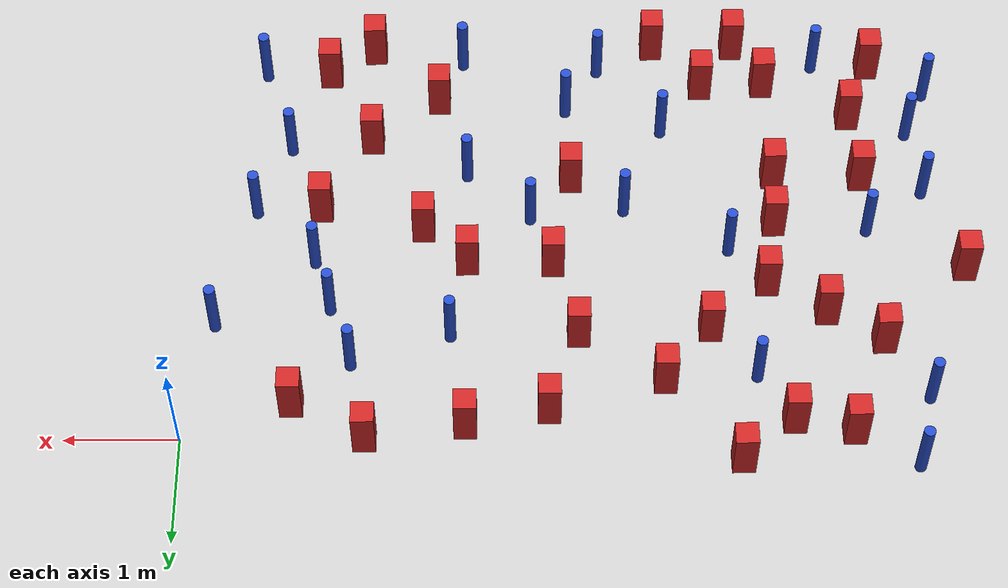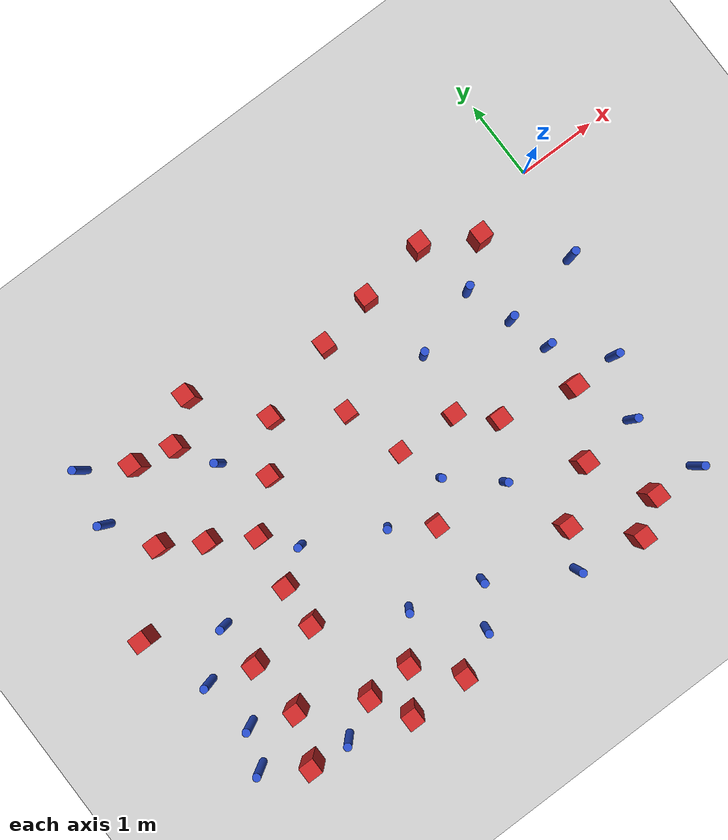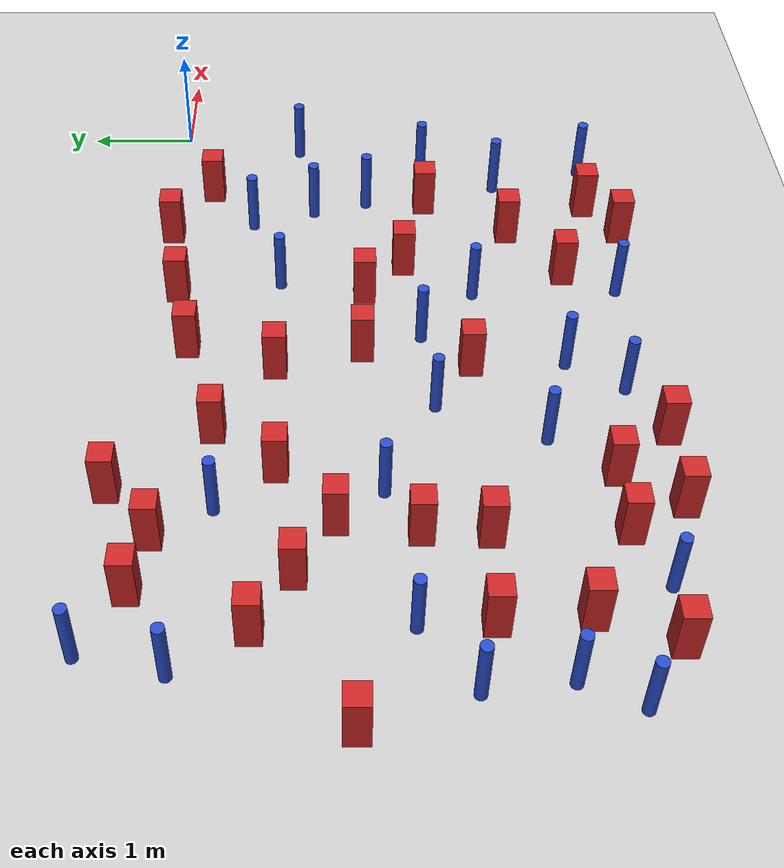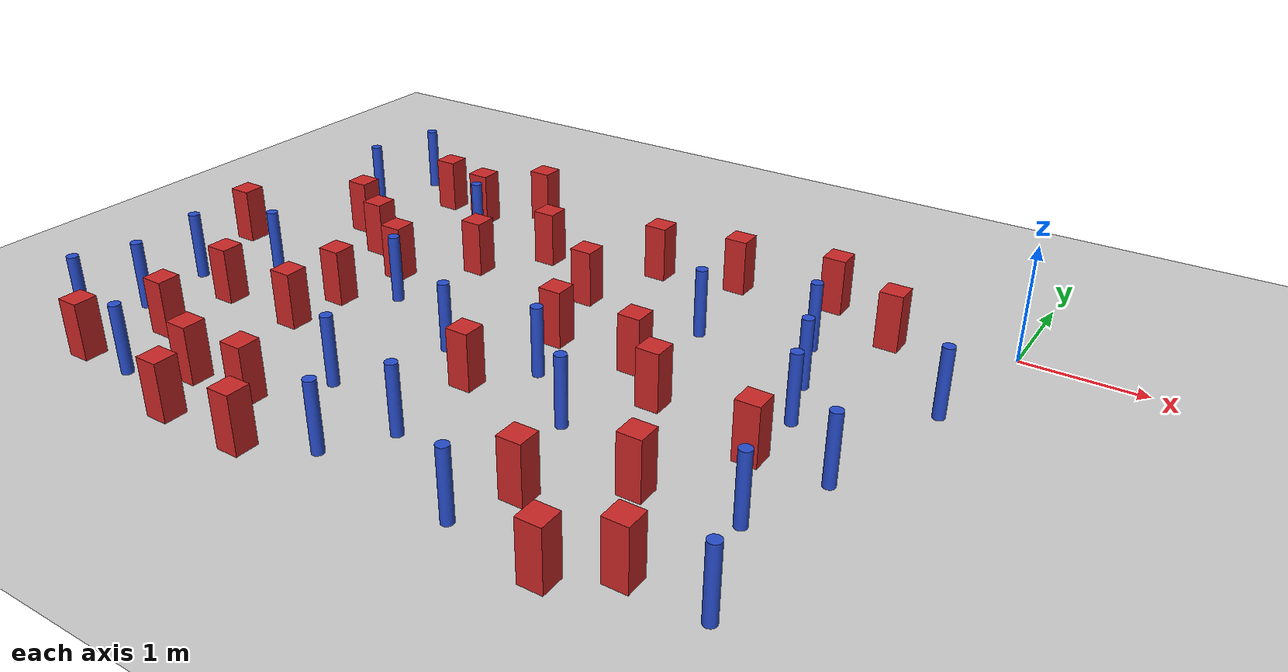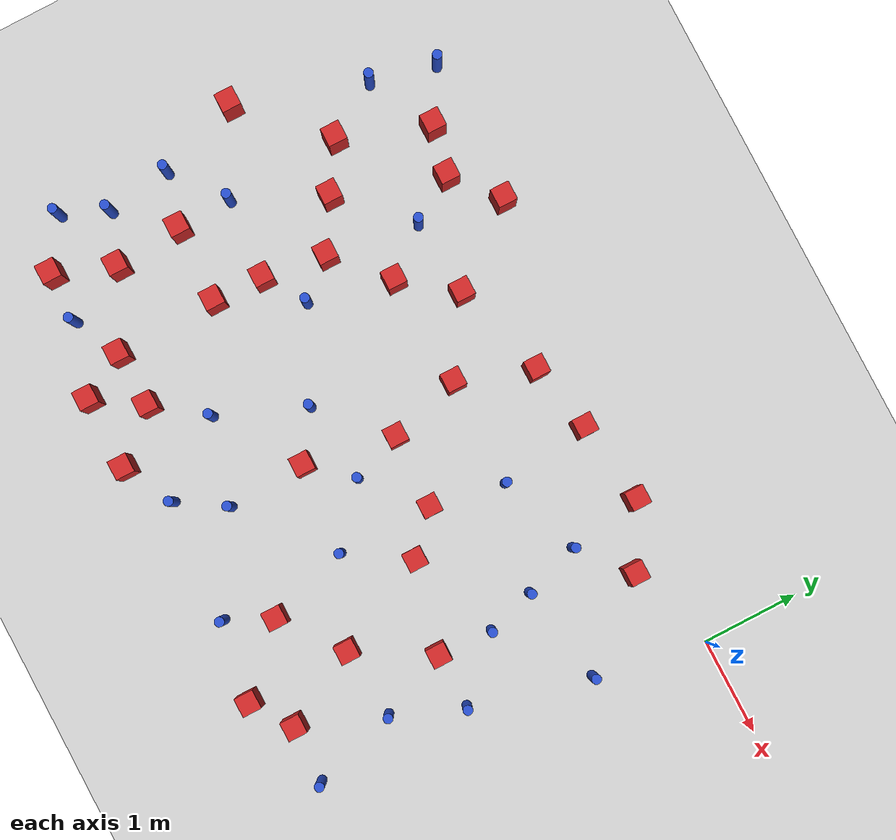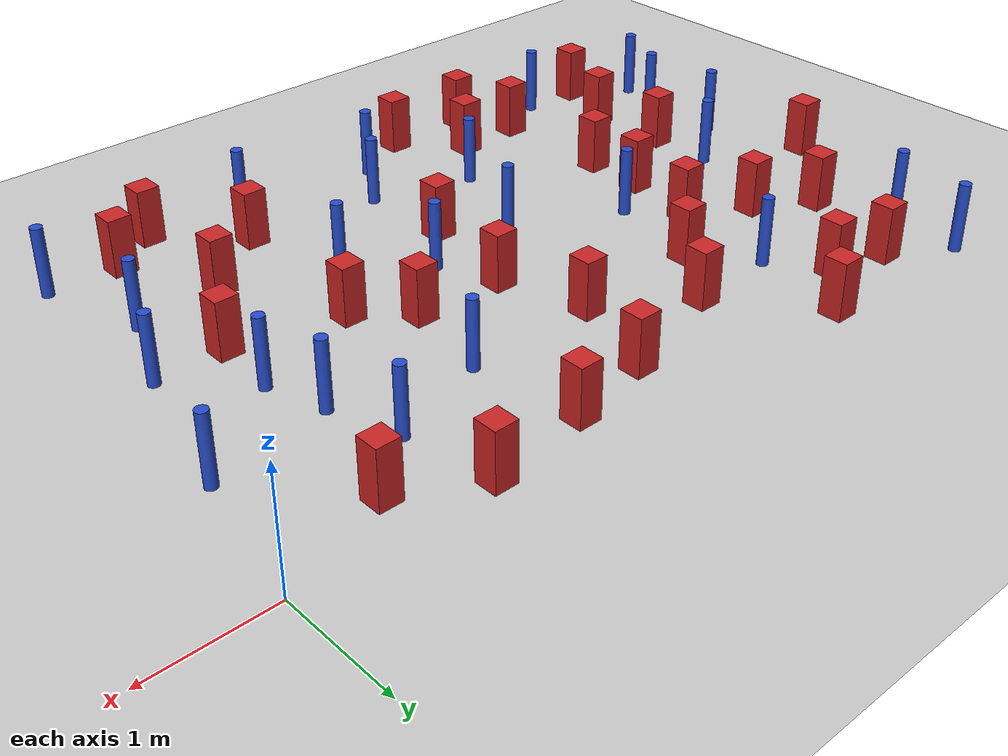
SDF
<sdf version="1.6">
 <world name="default">
  <model name="ground_plane">
   <static>1</static>
   <link name="link">
    <collision name="collision">
     <geometry><plane><normal>0 0 1</normal><size>100 100</size></plane></geometry>
     <surface><friction><ode><mu>100</mu><mu2>50</mu2></ode></friction></surface>
    </collision>
    <visual name="visual">
     <cast_shadows>0</cast_shadows>
     <geometry><plane><normal>0 0 1</normal><size>100 100</size></plane></geometry>
     <material>
      <ambient>1.0 1.0 1.0 1.0</ambient>
      <diffuse>0.8 0.8 0.8 1.0</diffuse>
      <specular>0.01 0.01 0.01 1.000000</specular>
     </material>
    </visual>
   </link>
  </model>
  <model name="pole_obstacle0">
   <static>true</static>
   <pose>-2.32125434121 -1.0319699468 -9.47619616065e-06 5.49618799738e-07 2.3631041407e-07 -1.55090534797e-07</pose>
   <link name="link">
    <pose>0 0 0.3 0 -0 0</pose>
    <inertial>
     <mass>1</mass>
     <inertia><ixx>0.145833</ixx><ixy>0</ixy><ixz>0</ixz><iyy>0.145833</iyy><iyz>0</iyz><izz>0.125</izz></inertia>
    </inertial>
    <collision name="collision">
     <geometry><cylinder><radius>0.05</radius><length>.6</length></cylinder></geometry>
    </collision>
    <visual name="visual">
     <geometry><cylinder><radius>0.05</radius><length>.6</length></cylinder></geometry>
     <material>
      <script><name>Gazebo/Blue</name><uri>file://media/materials/scripts/gazebo.material</uri></script>
     </material>
    </visual>
   </link>
  </model>
  <model name="square_post_obstacle0">
   <static>true</static>
   <pose>-5.65463043567 -1.24283270204 -6.11067671241e-07 -5.50515727128e-06 -8.79689657224e-07 2.37013304536e-05</pose>
   <link name="link">
    <pose>0 0 0.25 0 -0 0</pose>
    <inertial>
     <mass>100</mass>
     <inertia>
      <ixx>0.166667</ixx>
      <ixy>0</ixy>
      <ixz>0</ixz>
      <iyy>0.166667</iyy>
      <iyz>0</iyz>
      <izz>0.166667</izz>
     </inertia>
    </inertial>
    <collision name="collision"><geometry><box><size>.2 .2 .5</size></box></geometry></collision>
    <visual name="visual">
     <geometry><box><size>.2 .2 .5</size></box></geometry>
     <material>
      <script><name>Gazebo/Red</name><uri>file://media/materials/scripts/gazebo.material</uri></script>
     </material>
    </visual>
   </link>
  </model>
  <model name="pole_obstacle5">
   <static>true</static>
   <pose>-1.10176745117 -1.83270935728 -9.47619616065e-06 5.49618799737e-07 2.36310414065e-07 -1.55090534798e-07</pose>
   <link name="link">
    <pose>0 0 0.3 0 -0 0</pose>
    <inertial>
     <mass>1</mass>
     <inertia><ixx>0.145833</ixx><ixy>0</ixy><ixz>0</ixz><iyy>0.145833</iyy><iyz>0</iyz><izz>0.125</izz></inertia>
    </inertial>
    <collision name="collision">
     <geometry><cylinder><radius>0.05</radius><length>.6</length></cylinder></geometry>
    </collision>
    <visual name="visual">
     <geometry><cylinder><radius>0.05</radius><length>.6</length></cylinder></geometry>
     <material>
      <script><name>Gazebo/Blue</name><uri>file://media/materials/scripts/gazebo.material</uri></script>
     </material>
    </visual>
   </link>
  </model>
  <model name="square_post_obstacle5">
   <static>true</static>
   <pose>-0.949633495577 -0.323597789229 -6.11067671241e-07 -5.50515727128e-06 -8.79689657224e-07 2.37013304536e-05</pose>
   <link name="link">
    <pose>0 0 0.25 0 -0 0</pose>
    <inertial>
     <mass>100</mass>
     <inertia>
      <ixx>0.166667</ixx>
      <ixy>0</ixy>
      <ixz>0</ixz>
      <iyy>0.166667</iyy>
      <iyz>0</iyz>
      <izz>0.166667</izz>
     </inertia>
    </inertial>
    <collision name="collision"><geometry><box><size>.2 .2 .5</size></box></geometry></collision>
    <visual name="visual">
     <geometry><box><size>.2 .2 .5</size></box></geometry>
     <material>
      <script><name>Gazebo/Red</name><uri>file://media/materials/scripts/gazebo.material</uri></script>
     </material>
    </visual>
   </link>
  </model>
  <model name="square_post_obstacle6">
   <static>true</static>
   <pose>-1.17910384282 -3.9688895999 -6.11067671241e-07 -5.50515727128e-06 -8.79689657224e-07 2.37013304536e-05</pose>
   <link name="link">
    <pose>0 0 0.25 0 -0 0</pose>
    <inertial>
     <mass>100</mass>
     <inertia>
      <ixx>0.166667</ixx>
      <ixy>0</ixy>
      <ixz>0</ixz>
      <iyy>0.166667</iyy>
      <iyz>0</iyz>
      <izz>0.166667</izz>
     </inertia>
    </inertial>
    <collision name="collision"><geometry><box><size>.2 .2 .5</size></box></geometry></collision>
    <visual name="visual">
     <geometry><box><size>.2 .2 .5</size></box></geometry>
     <material>
      <script><name>Gazebo/Red</name><uri>file://media/materials/scripts/gazebo.material</uri></script>
     </material>
    </visual>
   </link>
  </model>
  <model name="pole_obstacle11">
   <static>true</static>
   <pose>-6.33901266133 0.316842435383 -9.47619616065e-06 5.49618799737e-07 2.36310414057e-07 -1.55090534802e-07</pose>
   <link name="link">
    <pose>0 0 0.3 0 -0 0</pose>
    <inertial>
     <mass>1</mass>
     <inertia><ixx>0.145833</ixx><ixy>0</ixy><ixz>0</ixz><iyy>0.145833</iyy><iyz>0</iyz><izz>0.125</izz></inertia>
    </inertial>
    <collision name="collision">
     <geometry><cylinder><radius>0.05</radius><length>.6</length></cylinder></geometry>
    </collision>
    <visual name="visual">
     <geometry><cylinder><radius>0.05</radius><length>.6</length></cylinder></geometry>
     <material>
      <script><name>Gazebo/Blue</name><uri>file://media/materials/scripts/gazebo.material</uri></script>
     </material>
    </visual>
   </link>
  </model>
  <model name="pole_obstacle12">
   <static>true</static>
   <pose>-3.68326710678 -4.0231572233 -9.47619616065e-06 5.49618799737e-07 2.36310414057e-07 -1.55090534803e-07</pose>
   <link name="link">
    <pose>0 0 0.3 0 -0 0</pose>
    <inertial>
     <mass>1</mass>
     <inertia><ixx>0.145833</ixx><ixy>0</ixy><ixz>0</ixz><iyy>0.145833</iyy><iyz>0</iyz><izz>0.125</izz></inertia>
    </inertial>
    <collision name="collision">
     <geometry><cylinder><radius>0.05</radius><length>.6</length></cylinder></geometry>
    </collision>
    <visual name="visual">
     <geometry><cylinder><radius>0.05</radius><length>.6</length></cylinder></geometry>
     <material>
      <script><name>Gazebo/Blue</name><uri>file://media/materials/scripts/gazebo.material</uri></script>
     </material>
    </visual>
   </link>
  </model>
  <model name="pole_obstacle13">
   <static>true</static>
   <pose>-4.82165275078 -1.93948873702 -9.47619616065e-06 5.49618799738e-07 2.36310414071e-07 -1.55090534796e-07</pose>
   <link name="link">
    <pose>0 0 0.3 0 -0 0</pose>
    <inertial>
     <mass>1</mass>
     <inertia><ixx>0.145833</ixx><ixy>0</ixy><ixz>0</ixz><iyy>0.145833</iyy><iyz>0</iyz><izz>0.125</izz></inertia>
    </inertial>
    <collision name="collision">
     <geometry><cylinder><radius>0.05</radius><length>.6</length></cylinder></geometry>
    </collision>
    <visual name="visual">
     <geometry><cylinder><radius>0.05</radius><length>.6</length></cylinder></geometry>
     <material>
      <script><name>Gazebo/Blue</name><uri>file://media/materials/scripts/gazebo.material</uri></script>
     </material>
    </visual>
   </link>
  </model>
  <model name="square_post_obstacle18">
   <static>true</static>
   <pose>-4.64852297488 -3.79975451232 -6.11067671241e-07 -5.50515727128e-06 -8.79689657224e-07 2.37013304536e-05</pose>
   <link name="link">
    <pose>0 0 0.25 0 -0 0</pose>
    <inertial>
     <mass>100</mass>
     <inertia>
      <ixx>0.166667</ixx>
      <ixy>0</ixy>
      <ixz>0</ixz>
      <iyy>0.166667</iyy>
      <iyz>0</iyz>
      <izz>0.166667</izz>
     </inertia>
    </inertial>
    <collision name="collision"><geometry><box><size>.2 .2 .5</size></box></geometry></collision>
    <visual name="visual">
     <geometry><box><size>.2 .2 .5</size></box></geometry>
     <material>
      <script><name>Gazebo/Red</name><uri>file://media/materials/scripts/gazebo.material</uri></script>
     </material>
    </visual>
   </link>
  </model>
  <model name="square_post_obstacle37">
   <static>true</static>
   <pose>-6.00834548751 -3.42976978589 -6.11067671241e-07 -5.50515727128e-06 -8.79689657224e-07 2.37013304536e-05</pose>
   <link name="link">
    <pose>0 0 0.25 0 -0 0</pose>
    <inertial>
     <mass>100</mass>
     <inertia>
      <ixx>0.166667</ixx>
      <ixy>0</ixy>
      <ixz>0</ixz>
      <iyy>0.166667</iyy>
      <iyz>0</iyz>
      <izz>0.166667</izz>
     </inertia>
    </inertial>
    <collision name="collision"><geometry><box><size>.2 .2 .5</size></box></geometry></collision>
    <visual name="visual">
     <geometry><box><size>.2 .2 .5</size></box></geometry>
     <material>
      <script><name>Gazebo/Red</name><uri>file://media/materials/scripts/gazebo.material</uri></script>
     </material>
    </visual>
   </link>
  </model>
  <model name="square_post_obstacle39">
   <static>true</static>
   <pose>-2.20349257299 -3.6469477243 -6.11067671241e-07 -5.50515727128e-06 -8.79689657224e-07 2.37013304536e-05</pose>
   <link name="link">
    <pose>0 0 0.25 0 -0 0</pose>
    <inertial>
     <mass>100</mass>
     <inertia>
      <ixx>0.166667</ixx>
      <ixy>0</ixy>
      <ixz>0</ixz>
      <iyy>0.166667</iyy>
      <iyz>0</iyz>
      <izz>0.166667</izz>
     </inertia>
    </inertial>
    <collision name="collision"><geometry><box><size>.2 .2 .5</size></box></geometry></collision>
    <visual name="visual">
     <geometry><box><size>.2 .2 .5</size></box></geometry>
     <material>
      <script><name>Gazebo/Red</name><uri>file://media/materials/scripts/gazebo.material</uri></script>
     </material>
    </visual>
   </link>
  </model>
  <model name="pole_obstacle58">
   <static>true</static>
   <pose>-6.08665148745 -2.14628838133 -9.47619616065e-06 5.49618799738e-07 2.36310414051e-07 -1.55090534805e-07</pose>
   <link name="link">
    <pose>0 0 0.3 0 -0 0</pose>
    <inertial>
     <mass>1</mass>
     <inertia><ixx>0.145833</ixx><ixy>0</ixy><ixz>0</ixz><iyy>0.145833</iyy><iyz>0</iyz><izz>0.125</izz></inertia>
    </inertial>
    <collision name="collision">
     <geometry><cylinder><radius>0.05</radius><length>.6</length></cylinder></geometry>
    </collision>
    <visual name="visual">
     <geometry><cylinder><radius>0.05</radius><length>.6</length></cylinder></geometry>
     <material>
      <script><name>Gazebo/Blue</name><uri>file://media/materials/scripts/gazebo.material</uri></script>
     </material>
    </visual>
   </link>
  </model>
  <model name="pole_obstacle61">
   <static>true</static>
   <pose>-1.44753724713 -0.739697530865 -9.47619616065e-06 5.49618799737e-07 2.36310414065e-07 -1.55090534798e-07</pose>
   <link name="link">
    <pose>0 0 0.3 0 -0 0</pose>
    <inertial>
     <mass>1</mass>
     <inertia><ixx>0.145833</ixx><ixy>0</ixy><ixz>0</ixz><iyy>0.145833</iyy><iyz>0</iyz><izz>0.125</izz></inertia>
    </inertial>
    <collision name="collision">
     <geometry><cylinder><radius>0.05</radius><length>.6</length></cylinder></geometry>
    </collision>
    <visual name="visual">
     <geometry><cylinder><radius>0.05</radius><length>.6</length></cylinder></geometry>
     <material>
      <script><name>Gazebo/Blue</name><uri>file://media/materials/scripts/gazebo.material</uri></script>
     </material>
    </visual>
   </link>
  </model>
  <model name="square_post_obstacle48">
   <static>true</static>
   <pose>-5.24168588605 -2.21240760221 -6.11067671241e-07 -5.50515727128e-06 -8.79689657224e-07 2.37013304536e-05</pose>
   <link name="link">
    <pose>0 0 0.25 0 -0 0</pose>
    <inertial>
     <mass>100</mass>
     <inertia>
      <ixx>0.166667</ixx>
      <ixy>0</ixy>
      <ixz>0</ixz>
      <iyy>0.166667</iyy>
      <iyz>0</iyz>
      <izz>0.166667</izz>
     </inertia>
    </inertial>
    <collision name="collision"><geometry><box><size>.2 .2 .5</size></box></geometry></collision>
    <visual name="visual">
     <geometry><box><size>.2 .2 .5</size></box></geometry>
     <material>
      <script><name>Gazebo/Red</name><uri>file://media/materials/scripts/gazebo.material</uri></script>
     </material>
    </visual>
   </link>
  </model>
  <model name="pole_obstacle63">
   <static>true</static>
   <pose>-0.238737438077 -1.15729490668 -9.47619616065e-06 5.49618799738e-07 2.36310414065e-07 -1.55090534798e-07</pose>
   <link name="link">
    <pose>0 0 0.3 0 -0 0</pose>
    <inertial>
     <mass>1</mass>
     <inertia><ixx>0.145833</ixx><ixy>0</ixy><ixz>0</ixz><iyy>0.145833</iyy><iyz>0</iyz><izz>0.125</izz></inertia>
    </inertial>
    <collision name="collision">
     <geometry><cylinder><radius>0.05</radius><length>.6</length></cylinder></geometry>
    </collision>
    <visual name="visual">
     <geometry><cylinder><radius>0.05</radius><length>.6</length></cylinder></geometry>
     <material>
      <script><name>Gazebo/Blue</name><uri>file://media/materials/scripts/gazebo.material</uri></script>
     </material>
    </visual>
   </link>
  </model>
  <model name="square_post_obstacle55">
   <static>true</static>
   <pose>-2.45650557766 -0.0921689428949 -6.11067671241e-07 -5.50515727128e-06 -8.79689657224e-07 2.37013304536e-05</pose>
   <link name="link">
    <pose>0 0 0.25 0 -0 0</pose>
    <inertial>
     <mass>100</mass>
     <inertia>
      <ixx>0.166667</ixx>
      <ixy>0</ixy>
      <ixz>0</ixz>
      <iyy>0.166667</iyy>
      <iyz>0</iyz>
      <izz>0.166667</izz>
     </inertia>
    </inertial>
    <collision name="collision"><geometry><box><size>.2 .2 .5</size></box></geometry></collision>
    <visual name="visual">
     <geometry><box><size>.2 .2 .5</size></box></geometry>
     <material>
      <script><name>Gazebo/Red</name><uri>file://media/materials/scripts/gazebo.material</uri></script>
     </material>
    </visual>
   </link>
  </model>
  <model name="square_post_obstacle56">
   <static>true</static>
   <pose>-5.8035503685 -0.0130080551131 -6.11067671241e-07 -5.50515727128e-06 -8.79689657224e-07 2.37013304536e-05</pose>
   <link name="link">
    <pose>0 0 0.25 0 -0 0</pose>
    <inertial>
     <mass>100</mass>
     <inertia>
      <ixx>0.166667</ixx>
      <ixy>0</ixy>
      <ixz>0</ixz>
      <iyy>0.166667</iyy>
      <iyz>0</iyz>
      <izz>0.166667</izz>
     </inertia>
    </inertial>
    <collision name="collision"><geometry><box><size>.2 .2 .5</size></box></geometry></collision>
    <visual name="visual">
     <geometry><box><size>.2 .2 .5</size></box></geometry>
     <material>
      <script><name>Gazebo/Red</name><uri>file://media/materials/scripts/gazebo.material</uri></script>
     </material>
    </visual>
   </link>
  </model>
  <model name="pole_obstacle69">
   <static>true</static>
   <pose>-2.46625225845 -2.79615076091 -9.47619616065e-06 5.49618799737e-07 2.36310414051e-07 -1.55090534807e-07</pose>
   <link name="link">
    <pose>0 0 0.3 0 -0 0</pose>
    <inertial>
     <mass>1</mass>
     <inertia><ixx>0.145833</ixx><ixy>0</ixy><ixz>0</ixz><iyy>0.145833</iyy><iyz>0</iyz><izz>0.125</izz></inertia>
    </inertial>
    <collision name="collision">
     <geometry><cylinder><radius>0.05</radius><length>.6</length></cylinder></geometry>
    </collision>
    <visual name="visual">
     <geometry><cylinder><radius>0.05</radius><length>.6</length></cylinder></geometry>
     <material>
      <script><name>Gazebo/Blue</name><uri>file://media/materials/scripts/gazebo.material</uri></script>
     </material>
    </visual>
   </link>
  </model>
  <model name="square_post_obstacle61">
   <static>true</static>
   <pose>-5.26277890673 -2.74680160651 -6.11067671241e-07 -5.50515727128e-06 -8.79689657224e-07 2.37013304536e-05</pose>
   <link name="link">
    <pose>0 0 0.25 0 -0 0</pose>
    <inertial>
     <mass>100</mass>
     <inertia>
      <ixx>0.166667</ixx>
      <ixy>0</ixy>
      <ixz>0</ixz>
      <iyy>0.166667</iyy>
      <iyz>0</iyz>
      <izz>0.166667</izz>
     </inertia>
    </inertial>
    <collision name="collision"><geometry><box><size>.2 .2 .5</size></box></geometry></collision>
    <visual name="visual">
     <geometry><box><size>.2 .2 .5</size></box></geometry>
     <material>
      <script><name>Gazebo/Red</name><uri>file://media/materials/scripts/gazebo.material</uri></script>
     </material>
    </visual>
   </link>
  </model>
  <model name="square_post_obstacle62">
   <static>true</static>
   <pose>-1.59118204534 0.0291003635134 -6.11067671241e-07 -5.50515727128e-06 -8.79689657224e-07 2.37013304536e-05</pose>
   <link name="link">
    <pose>0 0 0.25 0 -0 0</pose>
    <inertial>
     <mass>100</mass>
     <inertia>
      <ixx>0.166667</ixx>
      <ixy>0</ixy>
      <ixz>0</ixz>
      <iyy>0.166667</iyy>
      <iyz>0</iyz>
      <izz>0.166667</izz>
     </inertia>
    </inertial>
    <collision name="collision"><geometry><box><size>.2 .2 .5</size></box></geometry></collision>
    <visual name="visual">
     <geometry><box><size>.2 .2 .5</size></box></geometry>
     <material>
      <script><name>Gazebo/Red</name><uri>file://media/materials/scripts/gazebo.material</uri></script>
     </material>
    </visual>
   </link>
  </model>
  <model name="square_post_obstacle64">
   <static>true</static>
   <pose>-1.1421200099 -2.39892744462 -6.11067671241e-07 -5.50515727128e-06 -8.79689657224e-07 2.37013304536e-05</pose>
   <link name="link">
    <pose>0 0 0.25 0 -0 0</pose>
    <inertial>
     <mass>100</mass>
     <inertia>
      <ixx>0.166667</ixx>
      <ixy>0</ixy>
      <ixz>0</ixz>
      <iyy>0.166667</iyy>
      <iyz>0</iyz>
      <izz>0.166667</izz>
     </inertia>
    </inertial>
    <collision name="collision"><geometry><box><size>.2 .2 .5</size></box></geometry></collision>
    <visual name="visual">
     <geometry><box><size>.2 .2 .5</size></box></geometry>
     <material>
      <script><name>Gazebo/Red</name><uri>file://media/materials/scripts/gazebo.material</uri></script>
     </material>
    </visual>
   </link>
  </model>
  <model name="square_post_obstacle67">
   <static>true</static>
   <pose>-1.59296998925 -4.2538629769 -6.11067671241e-07 -5.50515727128e-06 -8.79689657224e-07 2.37013304536e-05</pose>
   <link name="link">
    <pose>0 0 0.25 0 -0 0</pose>
    <inertial>
     <mass>100</mass>
     <inertia>
      <ixx>0.166667</ixx>
      <ixy>0</ixy>
      <ixz>0</ixz>
      <iyy>0.166667</iyy>
      <iyz>0</iyz>
      <izz>0.166667</izz>
     </inertia>
    </inertial>
    <collision name="collision"><geometry><box><size>.2 .2 .5</size></box></geometry></collision>
    <visual name="visual">
     <geometry><box><size>.2 .2 .5</size></box></geometry>
     <material>
      <script><name>Gazebo/Red</name><uri>file://media/materials/scripts/gazebo.material</uri></script>
     </material>
    </visual>
   </link>
  </model>
  <model name="square_post_obstacle74">
   <static>true</static>
   <pose>-6.06476820306 -2.71996574445 -6.11067671241e-07 -5.50515727128e-06 -8.79689657224e-07 2.37013304536e-05</pose>
   <link name="link">
    <pose>0 0 0.25 0 -0 0</pose>
    <inertial>
     <mass>100</mass>
     <inertia>
      <ixx>0.166667</ixx>
      <ixy>0</ixy>
      <ixz>0</ixz>
      <iyy>0.166667</iyy>
      <iyz>0</iyz>
      <izz>0.166667</izz>
     </inertia>
    </inertial>
    <collision name="collision"><geometry><box><size>.2 .2 .5</size></box></geometry></collision>
    <visual name="visual">
     <geometry><box><size>.2 .2 .5</size></box></geometry>
     <material>
      <script><name>Gazebo/Red</name><uri>file://media/materials/scripts/gazebo.material</uri></script>
     </material>
    </visual>
   </link>
  </model>
  <model name="square_post_obstacle77">
   <static>true</static>
   <pose>-1.5899916132 -3.17511417566 -6.11067671241e-07 -5.50515727128e-06 -8.79689657224e-07 2.37013304536e-05</pose>
   <link name="link">
    <pose>0 0 0.25 0 -0 0</pose>
    <inertial>
     <mass>100</mass>
     <inertia>
      <ixx>0.166667</ixx>
      <ixy>0</ixy>
      <ixz>0</ixz>
      <iyy>0.166667</iyy>
      <iyz>0</iyz>
      <izz>0.166667</izz>
     </inertia>
    </inertial>
    <collision name="collision"><geometry><box><size>.2 .2 .5</size></box></geometry></collision>
    <visual name="visual">
     <geometry><box><size>.2 .2 .5</size></box></geometry>
     <material>
      <script><name>Gazebo/Red</name><uri>file://media/materials/scripts/gazebo.material</uri></script>
     </material>
    </visual>
   </link>
  </model>
  <model name="pole_obstacle93">
   <static>true</static>
   <pose>-5.00422911432 -0.593266476046 -9.47619616065e-06 5.49618799737e-07 2.36310414061e-07 -1.550905348e-07</pose>
   <link name="link">
    <pose>0 0 0.3 0 -0 0</pose>
    <inertial>
     <mass>1</mass>
     <inertia><ixx>0.145833</ixx><ixy>0</ixy><ixz>0</ixz><iyy>0.145833</iyy><iyz>0</iyz><izz>0.125</izz></inertia>
    </inertial>
    <collision name="collision">
     <geometry><cylinder><radius>0.05</radius><length>.6</length></cylinder></geometry>
    </collision>
    <visual name="visual">
     <geometry><cylinder><radius>0.05</radius><length>.6</length></cylinder></geometry>
     <material>
      <script><name>Gazebo/Blue</name><uri>file://media/materials/scripts/gazebo.material</uri></script>
     </material>
    </visual>
   </link>
  </model>
  <model name="square_post_obstacle86">
   <static>true</static>
   <pose>-2.07290873177 -2.17039805056 -6.11067671241e-07 -5.50515727128e-06 -8.79689657224e-07 2.37013304536e-05</pose>
   <link name="link">
    <pose>0 0 0.25 0 -0 0</pose>
    <inertial>
     <mass>100</mass>
     <inertia>
      <ixx>0.166667</ixx>
      <ixy>0</ixy>
      <ixz>0</ixz>
      <iyy>0.166667</iyy>
      <iyz>0</iyz>
      <izz>0.166667</izz>
     </inertia>
    </inertial>
    <collision name="collision"><geometry><box><size>.2 .2 .5</size></box></geometry></collision>
    <visual name="visual">
     <geometry><box><size>.2 .2 .5</size></box></geometry>
     <material>
      <script><name>Gazebo/Red</name><uri>file://media/materials/scripts/gazebo.material</uri></script>
     </material>
    </visual>
   </link>
  </model>
  <model name="pole_obstacle96">
   <static>true</static>
   <pose>-6.74541932731 -3.71419245419 -9.47619616065e-06 5.49618799738e-07 2.36310414051e-07 -1.55090534805e-07</pose>
   <link name="link">
    <pose>0 0 0.3 0 -0 0</pose>
    <inertial>
     <mass>1</mass>
     <inertia><ixx>0.145833</ixx><ixy>0</ixy><ixz>0</ixz><iyy>0.145833</iyy><iyz>0</iyz><izz>0.125</izz></inertia>
    </inertial>
    <collision name="collision">
     <geometry><cylinder><radius>0.05</radius><length>.6</length></cylinder></geometry>
    </collision>
    <visual name="visual">
     <geometry><cylinder><radius>0.05</radius><length>.6</length></cylinder></geometry>
     <material>
      <script><name>Gazebo/Blue</name><uri>file://media/materials/scripts/gazebo.material</uri></script>
     </material>
    </visual>
   </link>
  </model>
  <model name="square_post_obstacle90">
   <static>true</static>
   <pose>-3.41117791881 -2.71631156394 -6.11067671241e-07 -5.50515727128e-06 -8.79689657224e-07 2.37013304536e-05</pose>
   <link name="link">
    <pose>0 0 0.25 0 -0 0</pose>
    <inertial>
     <mass>100</mass>
     <inertia>
      <ixx>0.166667</ixx>
      <ixy>0</ixy>
      <ixz>0</ixz>
      <iyy>0.166667</iyy>
      <iyz>0</iyz>
      <izz>0.166667</izz>
     </inertia>
    </inertial>
    <collision name="collision"><geometry><box><size>.2 .2 .5</size></box></geometry></collision>
    <visual name="visual">
     <geometry><box><size>.2 .2 .5</size></box></geometry>
     <material>
      <script><name>Gazebo/Red</name><uri>file://media/materials/scripts/gazebo.material</uri></script>
     </material>
    </visual>
   </link>
  </model>
  <model name="square_post_obstacle106">
   <static>true</static>
   <pose>-3.4508041875 -1.02352683989 -6.11067671241e-07 -5.50515727128e-06 -8.79689657224e-07 2.37013304536e-05</pose>
   <link name="link">
    <pose>0 0 0.25 0 -0 0</pose>
    <inertial>
     <mass>100</mass>
     <inertia>
      <ixx>0.166667</ixx>
      <ixy>0</ixy>
      <ixz>0</ixz>
      <iyy>0.166667</iyy>
      <iyz>0</iyz>
      <izz>0.166667</izz>
     </inertia>
    </inertial>
    <collision name="collision"><geometry><box><size>.2 .2 .5</size></box></geometry></collision>
    <visual name="visual">
     <geometry><box><size>.2 .2 .5</size></box></geometry>
     <material>
      <script><name>Gazebo/Red</name><uri>file://media/materials/scripts/gazebo.material</uri></script>
     </material>
    </visual>
   </link>
  </model>
  <model name="square_post_obstacle107">
   <static>true</static>
   <pose>-3.2348935683 -1.77600183147 -6.11067671241e-07 -5.50515727128e-06 -8.79689657224e-07 2.37013304536e-05</pose>
   <link name="link">
    <pose>0 0 0.25 0 -0 0</pose>
    <inertial>
     <mass>100</mass>
     <inertia>
      <ixx>0.166667</ixx>
      <ixy>0</ixy>
      <ixz>0</ixz>
      <iyy>0.166667</iyy>
      <iyz>0</iyz>
      <izz>0.166667</izz>
     </inertia>
    </inertial>
    <collision name="collision"><geometry><box><size>.2 .2 .5</size></box></geometry></collision>
    <visual name="visual">
     <geometry><box><size>.2 .2 .5</size></box></geometry>
     <material>
      <script><name>Gazebo/Red</name><uri>file://media/materials/scripts/gazebo.material</uri></script>
     </material>
    </visual>
   </link>
  </model>
  <model name="square_post_obstacle109">
   <static>true</static>
   <pose>-5.29455997383 -0.126820579679 -6.11067671241e-07 -5.50515727128e-06 -8.79689657224e-07 2.37013304536e-05</pose>
   <link name="link">
    <pose>0 0 0.25 0 -0 0</pose>
    <inertial>
     <mass>100</mass>
     <inertia>
      <ixx>0.166667</ixx>
      <ixy>0</ixy>
      <ixz>0</ixz>
      <iyy>0.166667</iyy>
      <iyz>0</iyz>
      <izz>0.166667</izz>
     </inertia>
    </inertial>
    <collision name="collision"><geometry><box><size>.2 .2 .5</size></box></geometry></collision>
    <visual name="visual">
     <geometry><box><size>.2 .2 .5</size></box></geometry>
     <material>
      <script><name>Gazebo/Red</name><uri>file://media/materials/scripts/gazebo.material</uri></script>
     </material>
    </visual>
   </link>
  </model>
  <model name="pole_obstacle116">
   <static>true</static>
   <pose>-1.25243841037 -1.32353254008 -9.47619616065e-06 5.49618799737e-07 2.36310414065e-07 -1.55090534798e-07</pose>
   <link name="link">
    <pose>0 0 0.3 0 -0 0</pose>
    <inertial>
     <mass>1</mass>
     <inertia><ixx>0.145833</ixx><ixy>0</ixy><ixz>0</ixz><iyy>0.145833</iyy><iyz>0</iyz><izz>0.125</izz></inertia>
    </inertial>
    <collision name="collision">
     <geometry><cylinder><radius>0.05</radius><length>.6</length></cylinder></geometry>
    </collision>
    <visual name="visual">
     <geometry><cylinder><radius>0.05</radius><length>.6</length></cylinder></geometry>
     <material>
      <script><name>Gazebo/Blue</name><uri>file://media/materials/scripts/gazebo.material</uri></script>
     </material>
    </visual>
   </link>
  </model>
  <model name="pole_obstacle122">
   <static>true</static>
   <pose>-3.88865030022 -2.38849951335 -9.47619616065e-06 5.49618799737e-07 2.36310414051e-07 -1.55090534807e-07</pose>
   <link name="link">
    <pose>0 0 0.3 0 -0 0</pose>
    <inertial>
     <mass>1</mass>
     <inertia><ixx>0.145833</ixx><ixy>0</ixy><ixz>0</ixz><iyy>0.145833</iyy><iyz>0</iyz><izz>0.125</izz></inertia>
    </inertial>
    <collision name="collision">
     <geometry><cylinder><radius>0.05</radius><length>.6</length></cylinder></geometry>
    </collision>
    <visual name="visual">
     <geometry><cylinder><radius>0.05</radius><length>.6</length></cylinder></geometry>
     <material>
      <script><name>Gazebo/Blue</name><uri>file://media/materials/scripts/gazebo.material</uri></script>
     </material>
    </visual>
   </link>
  </model>
  <model name="pole_obstacle129">
   <static>true</static>
   <pose>-0.568864541679 -3.99993867311 -9.47619616065e-06 5.49618799737e-07 2.3631041408e-07 -1.55090534791e-07</pose>
   <link name="link">
    <pose>0 0 0.3 0 -0 0</pose>
    <inertial>
     <mass>1</mass>
     <inertia><ixx>0.145833</ixx><ixy>0</ixy><ixz>0</ixz><iyy>0.145833</iyy><iyz>0</iyz><izz>0.125</izz></inertia>
    </inertial>
    <collision name="collision">
     <geometry><cylinder><radius>0.05</radius><length>.6</length></cylinder></geometry>
    </collision>
    <visual name="visual">
     <geometry><cylinder><radius>0.05</radius><length>.6</length></cylinder></geometry>
     <material>
      <script><name>Gazebo/Blue</name><uri>file://media/materials/scripts/gazebo.material</uri></script>
     </material>
    </visual>
   </link>
  </model>
  <model name="pole_obstacle132">
   <static>true</static>
   <pose>-5.72416919134 -4.06391386763 -9.47619616065e-06 5.49618799737e-07 2.36310414037e-07 -1.55090534814e-07</pose>
   <link name="link">
    <pose>0 0 0.3 0 -0 0</pose>
    <inertial>
     <mass>1</mass>
     <inertia><ixx>0.145833</ixx><ixy>0</ixy><ixz>0</ixz><iyy>0.145833</iyy><iyz>0</iyz><izz>0.125</izz></inertia>
    </inertial>
    <collision name="collision">
     <geometry><cylinder><radius>0.05</radius><length>.6</length></cylinder></geometry>
    </collision>
    <visual name="visual">
     <geometry><cylinder><radius>0.05</radius><length>.6</length></cylinder></geometry>
     <material>
      <script><name>Gazebo/Blue</name><uri>file://media/materials/scripts/gazebo.material</uri></script>
     </material>
    </visual>
   </link>
  </model>
  <model name="square_post_obstacle129">
   <static>true</static>
   <pose>-4.61469846182 -1.07213532214 -6.11067671241e-07 -5.50515727128e-06 -8.79689657224e-07 2.37013304536e-05</pose>
   <link name="link">
    <pose>0 0 0.25 0 -0 0</pose>
    <inertial>
     <mass>100</mass>
     <inertia>
      <ixx>0.166667</ixx>
      <ixy>0</ixy>
      <ixz>0</ixz>
      <iyy>0.166667</iyy>
      <iyz>0</iyz>
      <izz>0.166667</izz>
     </inertia>
    </inertial>
    <collision name="collision"><geometry><box><size>.2 .2 .5</size></box></geometry></collision>
    <visual name="visual">
     <geometry><box><size>.2 .2 .5</size></box></geometry>
     <material>
      <script><name>Gazebo/Red</name><uri>file://media/materials/scripts/gazebo.material</uri></script>
     </material>
    </visual>
   </link>
  </model>
  <model name="square_post_obstacle130">
   <static>true</static>
   <pose>-4.20555333021 -4.28874370266 -6.11067671241e-07 -5.50515727128e-06 -8.79689657224e-07 2.37013304536e-05</pose>
   <link name="link">
    <pose>0 0 0.25 0 -0 0</pose>
    <inertial>
     <mass>100</mass>
     <inertia>
      <ixx>0.166667</ixx>
      <ixy>0</ixy>
      <ixz>0</ixz>
      <iyy>0.166667</iyy>
      <iyz>0</iyz>
      <izz>0.166667</izz>
     </inertia>
    </inertial>
    <collision name="collision"><geometry><box><size>.2 .2 .5</size></box></geometry></collision>
    <visual name="visual">
     <geometry><box><size>.2 .2 .5</size></box></geometry>
     <material>
      <script><name>Gazebo/Red</name><uri>file://media/materials/scripts/gazebo.material</uri></script>
     </material>
    </visual>
   </link>
  </model>
  <model name="square_post_obstacle132">
   <static>true</static>
   <pose>-4.82916849795 0.2609276665 -6.11067671241e-07 -5.50515727128e-06 -8.79689657224e-07 2.37013304536e-05</pose>
   <link name="link">
    <pose>0 0 0.25 0 -0 0</pose>
    <inertial>
     <mass>100</mass>
     <inertia>
      <ixx>0.166667</ixx>
      <ixy>0</ixy>
      <ixz>0</ixz>
      <iyy>0.166667</iyy>
      <iyz>0</iyz>
      <izz>0.166667</izz>
     </inertia>
    </inertial>
    <collision name="collision"><geometry><box><size>.2 .2 .5</size></box></geometry></collision>
    <visual name="visual">
     <geometry><box><size>.2 .2 .5</size></box></geometry>
     <material>
      <script><name>Gazebo/Red</name><uri>file://media/materials/scripts/gazebo.material</uri></script>
     </material>
    </visual>
   </link>
  </model>
  <model name="pole_obstacle140">
   <static>true</static>
   <pose>-2.41987346915 -4.1232162514 -9.47619616065e-06 5.49618799738e-07 2.3631041406e-07 -1.55090534801e-07</pose>
   <link name="link">
    <pose>0 0 0.3 0 -0 0</pose>
    <inertial>
     <mass>1</mass>
     <inertia><ixx>0.145833</ixx><ixy>0</ixy><ixz>0</ixz><iyy>0.145833</iyy><iyz>0</iyz><izz>0.125</izz></inertia>
    </inertial>
    <collision name="collision">
     <geometry><cylinder><radius>0.05</radius><length>.6</length></cylinder></geometry>
    </collision>
    <visual name="visual">
     <geometry><cylinder><radius>0.05</radius><length>.6</length></cylinder></geometry>
     <material>
      <script><name>Gazebo/Blue</name><uri>file://media/materials/scripts/gazebo.material</uri></script>
     </material>
    </visual>
   </link>
  </model>
  <model name="square_post_obstacle140">
   <static>true</static>
   <pose>-6.24044050763 -4.04221368063 -6.11067671241e-07 -5.50515727128e-06 -8.79689657224e-07 2.37013304536e-05</pose>
   <link name="link">
    <pose>0 0 0.25 0 -0 0</pose>
    <inertial>
     <mass>100</mass>
     <inertia>
      <ixx>0.166667</ixx>
      <ixy>0</ixy>
      <ixz>0</ixz>
      <iyy>0.166667</iyy>
      <iyz>0</iyz>
      <izz>0.166667</izz>
     </inertia>
    </inertial>
    <collision name="collision"><geometry><box><size>.2 .2 .5</size></box></geometry></collision>
    <visual name="visual">
     <geometry><box><size>.2 .2 .5</size></box></geometry>
     <material>
      <script><name>Gazebo/Red</name><uri>file://media/materials/scripts/gazebo.material</uri></script>
     </material>
    </visual>
   </link>
  </model>
  <model name="square_post_obstacle148">
   <static>true</static>
   <pose>-4.96757656352 -4.28872128196 -6.11067671241e-07 -5.50515727128e-06 -8.79689657224e-07 2.37013304536e-05</pose>
   <link name="link">
    <pose>0 0 0.25 0 -0 0</pose>
    <inertial>
     <mass>100</mass>
     <inertia>
      <ixx>0.166667</ixx>
      <ixy>0</ixy>
      <ixz>0</ixz>
      <iyy>0.166667</iyy>
      <iyz>0</iyz>
      <izz>0.166667</izz>
     </inertia>
    </inertial>
    <collision name="collision"><geometry><box><size>.2 .2 .5</size></box></geometry></collision>
    <visual name="visual">
     <geometry><box><size>.2 .2 .5</size></box></geometry>
     <material>
      <script><name>Gazebo/Red</name><uri>file://media/materials/scripts/gazebo.material</uri></script>
     </material>
    </visual>
   </link>
  </model>
  <model name="square_post_obstacle153">
   <static>true</static>
   <pose>-3.18135048203 -0.240959161679 -6.11067671241e-07 -5.50515727128e-06 -8.79689657224e-07 2.37013304536e-05</pose>
   <link name="link">
    <pose>0 0 0.25 0 -0 0</pose>
    <inertial>
     <mass>100</mass>
     <inertia>
      <ixx>0.166667</ixx>
      <ixy>0</ixy>
      <ixz>0</ixz>
      <iyy>0.166667</iyy>
      <iyz>0</iyz>
      <izz>0.166667</izz>
     </inertia>
    </inertial>
    <collision name="collision"><geometry><box><size>.2 .2 .5</size></box></geometry></collision>
    <visual name="visual">
     <geometry><box><size>.2 .2 .5</size></box></geometry>
     <material>
      <script><name>Gazebo/Red</name><uri>file://media/materials/scripts/gazebo.material</uri></script>
     </material>
    </visual>
   </link>
  </model>
  <model name="square_post_obstacle156">
   <static>true</static>
   <pose>-2.46947267517 -1.80260375689 -6.11067671241e-07 -5.50515727128e-06 -8.79689657224e-07 2.37013304536e-05</pose>
   <link name="link">
    <pose>0 0 0.25 0 -0 0</pose>
    <inertial>
     <mass>100</mass>
     <inertia>
      <ixx>0.166667</ixx>
      <ixy>0</ixy>
      <ixz>0</ixz>
      <iyy>0.166667</iyy>
      <iyz>0</iyz>
      <izz>0.166667</izz>
     </inertia>
    </inertial>
    <collision name="collision"><geometry><box><size>.2 .2 .5</size></box></geometry></collision>
    <visual name="visual">
     <geometry><box><size>.2 .2 .5</size></box></geometry>
     <material>
      <script><name>Gazebo/Red</name><uri>file://media/materials/scripts/gazebo.material</uri></script>
     </material>
    </visual>
   </link>
  </model>
  <model name="square_post_obstacle170">
   <static>true</static>
   <pose>-6.92585456776 -1.70589245143 -6.11067671241e-07 -5.50515727128e-06 -8.79689657224e-07 2.37013304536e-05</pose>
   <link name="link">
    <pose>0 0 0.25 0 -0 0</pose>
    <inertial>
     <mass>100</mass>
     <inertia>
      <ixx>0.166667</ixx>
      <ixy>0</ixy>
      <ixz>0</ixz>
      <iyy>0.166667</iyy>
      <iyz>0</iyz>
      <izz>0.166667</izz>
     </inertia>
    </inertial>
    <collision name="collision"><geometry><box><size>.2 .2 .5</size></box></geometry></collision>
    <visual name="visual">
     <geometry><box><size>.2 .2 .5</size></box></geometry>
     <material>
      <script><name>Gazebo/Red</name><uri>file://media/materials/scripts/gazebo.material</uri></script>
     </material>
    </visual>
   </link>
  </model>
  <model name="pole_obstacle171">
   <static>true</static>
   <pose>-4.2598085541 -3.294586093 -9.47619616065e-06 5.49618799738e-07 2.36310414051e-07 -1.55090534805e-07</pose>
   <link name="link">
    <pose>0 0 0.3 0 -0 0</pose>
    <inertial>
     <mass>1</mass>
     <inertia><ixx>0.145833</ixx><ixy>0</ixy><ixz>0</ixz><iyy>0.145833</iyy><iyz>0</iyz><izz>0.125</izz></inertia>
    </inertial>
    <collision name="collision">
     <geometry><cylinder><radius>0.05</radius><length>.6</length></cylinder></geometry>
    </collision>
    <visual name="visual">
     <geometry><cylinder><radius>0.05</radius><length>.6</length></cylinder></geometry>
     <material>
      <script><name>Gazebo/Blue</name><uri>file://media/materials/scripts/gazebo.material</uri></script>
     </material>
    </visual>
   </link>
  </model>
  <model name="square_post_obstacle175">
   <static>true</static>
   <pose>-4.19559676351 -0.535934916002 -6.11067671241e-07 -5.50515727128e-06 -8.79689657224e-07 2.37013304536e-05</pose>
   <link name="link">
    <pose>0 0 0.25 0 -0 0</pose>
    <inertial>
     <mass>100</mass>
     <inertia>
      <ixx>0.166667</ixx>
      <ixy>0</ixy>
      <ixz>0</ixz>
      <iyy>0.166667</iyy>
      <iyz>0</iyz>
      <izz>0.166667</izz>
     </inertia>
    </inertial>
    <collision name="collision"><geometry><box><size>.2 .2 .5</size></box></geometry></collision>
    <visual name="visual">
     <geometry><box><size>.2 .2 .5</size></box></geometry>
     <material>
      <script><name>Gazebo/Red</name><uri>file://media/materials/scripts/gazebo.material</uri></script>
     </material>
    </visual>
   </link>
  </model>
  <model name="pole_obstacle180">
   <static>true</static>
   <pose>-6.53977829782 -3.24584766562 -9.47619616065e-06 5.49618799738e-07 2.36310414051e-07 -1.55090534805e-07</pose>
   <link name="link">
    <pose>0 0 0.3 0 -0 0</pose>
    <inertial>
     <mass>1</mass>
     <inertia><ixx>0.145833</ixx><ixy>0</ixy><ixz>0</ixz><iyy>0.145833</iyy><iyz>0</iyz><izz>0.125</izz></inertia>
    </inertial>
    <collision name="collision">
     <geometry><cylinder><radius>0.05</radius><length>.6</length></cylinder></geometry>
    </collision>
    <visual name="visual">
     <geometry><cylinder><radius>0.05</radius><length>.6</length></cylinder></geometry>
     <material>
      <script><name>Gazebo/Blue</name><uri>file://media/materials/scripts/gazebo.material</uri></script>
     </material>
    </visual>
   </link>
  </model>
  <model name="square_post_obstacle187">
   <static>true</static>
   <pose>-6.13942856079 -0.936750719228 -6.11067671241e-07 -5.50515727128e-06 -8.79689657224e-07 2.37013304536e-05</pose>
   <link name="link">
    <pose>0 0 0.25 0 -0 0</pose>
    <inertial>
     <mass>100</mass>
     <inertia>
      <ixx>0.166667</ixx>
      <ixy>0</ixy>
      <ixz>0</ixz>
      <iyy>0.166667</iyy>
      <iyz>0</iyz>
      <izz>0.166667</izz>
     </inertia>
    </inertial>
    <collision name="collision"><geometry><box><size>.2 .2 .5</size></box></geometry></collision>
    <visual name="visual">
     <geometry><box><size>.2 .2 .5</size></box></geometry>
     <material>
      <script><name>Gazebo/Red</name><uri>file://media/materials/scripts/gazebo.material</uri></script>
     </material>
    </visual>
   </link>
  </model>
  <model name="pole_obstacle187">
   <static>true</static>
   <pose>-6.62657777145 -2.56755355002 -9.47619616065e-06 5.49618799738e-07 2.36310414051e-07 -1.55090534805e-07</pose>
   <link name="link">
    <pose>0 0 0.3 0 -0 0</pose>
    <inertial>
     <mass>1</mass>
     <inertia><ixx>0.145833</ixx><ixy>0</ixy><ixz>0</ixz><iyy>0.145833</iyy><iyz>0</iyz><izz>0.125</izz></inertia>
    </inertial>
    <collision name="collision">
     <geometry><cylinder><radius>0.05</radius><length>.6</length></cylinder></geometry>
    </collision>
    <visual name="visual">
     <geometry><cylinder><radius>0.05</radius><length>.6</length></cylinder></geometry>
     <material>
      <script><name>Gazebo/Blue</name><uri>file://media/materials/scripts/gazebo.material</uri></script>
     </material>
    </visual>
   </link>
  </model>
  <model name="square_post_obstacle193">
   <static>true</static>
   <pose>-5.22894980134 -3.81972869821 -6.11067671241e-07 -5.50515727128e-06 -8.79689657224e-07 2.37013304536e-05</pose>
   <link name="link">
    <pose>0 0 0.25 0 -0 0</pose>
    <inertial>
     <mass>100</mass>
     <inertia>
      <ixx>0.166667</ixx>
      <ixy>0</ixy>
      <ixz>0</ixz>
      <iyy>0.166667</iyy>
      <iyz>0</iyz>
      <izz>0.166667</izz>
     </inertia>
    </inertial>
    <collision name="collision"><geometry><box><size>.2 .2 .5</size></box></geometry></collision>
    <visual name="visual">
     <geometry><box><size>.2 .2 .5</size></box></geometry>
     <material>
      <script><name>Gazebo/Red</name><uri>file://media/materials/scripts/gazebo.material</uri></script>
     </material>
    </visual>
   </link>
  </model>
  <model name="square_post_obstacle196">
   <static>true</static>
   <pose>-5.14401614052 -1.55420326852 -6.11067671241e-07 -5.50515727128e-06 -8.79689657224e-07 2.37013304536e-05</pose>
   <link name="link">
    <pose>0 0 0.25 0 -0 0</pose>
    <inertial>
     <mass>100</mass>
     <inertia>
      <ixx>0.166667</ixx>
      <ixy>0</ixy>
      <ixz>0</ixz>
      <iyy>0.166667</iyy>
      <iyz>0</iyz>
      <izz>0.166667</izz>
     </inertia>
    </inertial>
    <collision name="collision"><geometry><box><size>.2 .2 .5</size></box></geometry></collision>
    <visual name="visual">
     <geometry><box><size>.2 .2 .5</size></box></geometry>
     <material>
      <script><name>Gazebo/Red</name><uri>file://media/materials/scripts/gazebo.material</uri></script>
     </material>
    </visual>
   </link>
  </model>
  <model name="pole_obstacle189">
   <static>true</static>
   <pose>-6.49168899322 -0.36374903725 -9.47619616065e-06 5.49618799737e-07 2.36310414057e-07 -1.55090534802e-07</pose>
   <link name="link">
    <pose>0 0 0.3 0 -0 0</pose>
    <inertial>
     <mass>1</mass>
     <inertia><ixx>0.145833</ixx><ixy>0</ixy><ixz>0</ixz><iyy>0.145833</iyy><iyz>0</iyz><izz>0.125</izz></inertia>
    </inertial>
    <collision name="collision">
     <geometry><cylinder><radius>0.05</radius><length>.6</length></cylinder></geometry>
    </collision>
    <visual name="visual">
     <geometry><cylinder><radius>0.05</radius><length>.6</length></cylinder></geometry>
     <material>
      <script><name>Gazebo/Blue</name><uri>file://media/materials/scripts/gazebo.material</uri></script>
     </material>
    </visual>
   </link>
  </model>
  <model name="pole_obstacle194">
   <static>true</static>
   <pose>-3.37804469731 -3.54356626028 -9.47619616065e-06 5.49618799737e-07 2.36310414051e-07 -1.55090534807e-07</pose>
   <link name="link">
    <pose>0 0 0.3 0 -0 0</pose>
    <inertial>
     <mass>1</mass>
     <inertia><ixx>0.145833</ixx><ixy>0</ixy><ixz>0</ixz><iyy>0.145833</iyy><iyz>0</iyz><izz>0.125</izz></inertia>
    </inertial>
    <collision name="collision">
     <geometry><cylinder><radius>0.05</radius><length>.6</length></cylinder></geometry>
    </collision>
    <visual name="visual">
     <geometry><cylinder><radius>0.05</radius><length>.6</length></cylinder></geometry>
     <material>
      <script><name>Gazebo/Blue</name><uri>file://media/materials/scripts/gazebo.material</uri></script>
     </material>
    </visual>
   </link>
  </model>
  <model name="pole_obstacle211">
   <static>true</static>
   <pose>-0.840826990611 -3.11134997922 -9.47619616065e-06 5.49618799737e-07 2.36310414066e-07 -1.55090534797e-07</pose>
   <link name="link">
    <pose>0 0 0.3 0 -0 0</pose>
    <inertial>
     <mass>1</mass>
     <inertia><ixx>0.145833</ixx><ixy>0</ixy><ixz>0</ixz><iyy>0.145833</iyy><iyz>0</iyz><izz>0.125</izz></inertia>
    </inertial>
    <collision name="collision">
     <geometry><cylinder><radius>0.05</radius><length>.6</length></cylinder></geometry>
    </collision>
    <visual name="visual">
     <geometry><cylinder><radius>0.05</radius><length>.6</length></cylinder></geometry>
     <material>
      <script><name>Gazebo/Blue</name><uri>file://media/materials/scripts/gazebo.material</uri></script>
     </material>
    </visual>
   </link>
  </model>
  <model name="pole_obstacle223">
   <static>true</static>
   <pose>-0.553054990611 -2.39265997922 -9.4761961606e-06 5.49618799729e-07 2.36310414007e-07 -1.5509053482e-07</pose>
   <link name="link">
    <pose>0 0 0.3 0 -0 0</pose>
    <inertial>
     <mass>1</mass>
     <inertia><ixx>0.145833</ixx><ixy>0</ixy><ixz>0</ixz><iyy>0.145833</iyy><iyz>0</iyz><izz>0.125</izz></inertia>
    </inertial>
    <collision name="collision">
     <geometry><cylinder><radius>0.05</radius><length>.6</length></cylinder></geometry>
    </collision>
    <visual name="visual">
     <geometry><cylinder><radius>0.05</radius><length>.6</length></cylinder></geometry>
     <material>
      <script><name>Gazebo/Blue</name><uri>file://media/materials/scripts/gazebo.material</uri></script>
     </material>
    </visual>
   </link>
  </model>
  <model name="pole_obstacle230">
   <static>true</static>
   <pose>-3.03910999061 -2.30150997922 -9.4761961606e-06 5.49618799729e-07 2.36310414014e-07 -1.55090534816e-07</pose>
   <link name="link">
    <pose>0 0 0.3 0 -0 0</pose>
    <inertial>
     <mass>1</mass>
     <inertia><ixx>0.145833</ixx><ixy>0</ixy><ixz>0</ixz><iyy>0.145833</iyy><iyz>0</iyz><izz>0.125</izz></inertia>
    </inertial>
    <collision name="collision">
     <geometry><cylinder><radius>0.05</radius><length>.6</length></cylinder></geometry>
    </collision>
    <visual name="visual">
     <geometry><cylinder><radius>0.05</radius><length>.6</length></cylinder></geometry>
     <material>
      <script><name>Gazebo/Blue</name><uri>file://media/materials/scripts/gazebo.material</uri></script>
     </material>
    </visual>
   </link>
  </model>
 </world>
</sdf>
